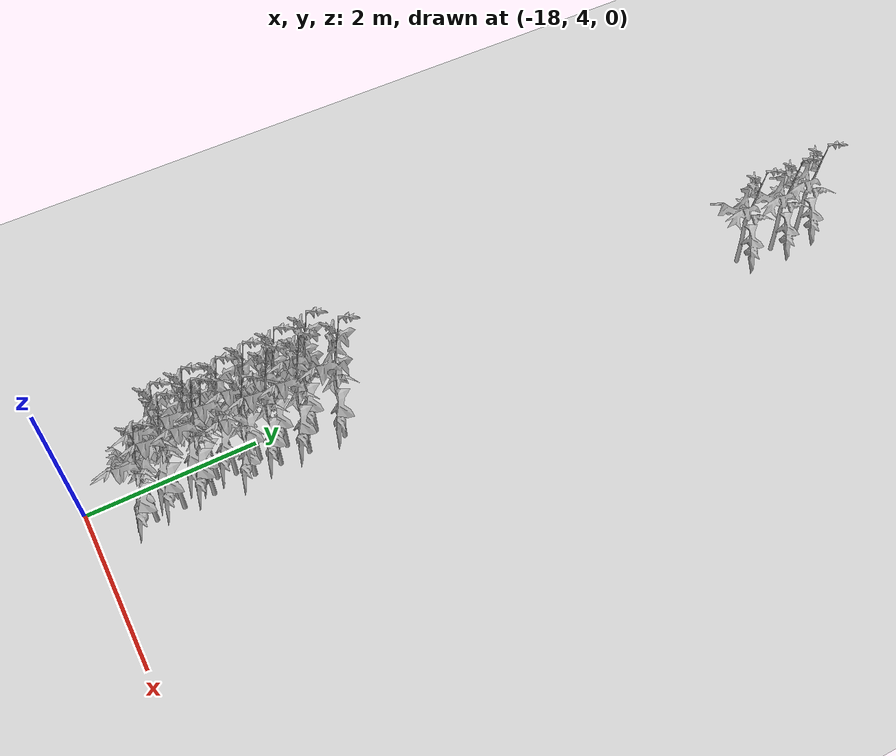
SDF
<sdf version="1.6">
 <world name="default">
  <model name="ground_plane">
   <static>1</static>
   <link name="link">
    <collision name="collision">
     <geometry><plane><normal>0 0 1</normal><size>100 100</size></plane></geometry>
     <surface>
      <contact><collide_bitmask>65535</collide_bitmask></contact>
      <friction><ode><mu>100</mu><mu2>50</mu2></ode></friction>
     </surface>
    </collision>
    <visual name="visual">
     <cast_shadows>0</cast_shadows>
     <geometry><plane><normal>0 0 1</normal><size>100 100</size></plane></geometry>
     <material>
      <script><uri>file://media/materials/scripts/gazebo.material</uri><name>Gazebo/Grey</name></script>
     </material>
    </visual>
   </link>
  </model>
  <model name="Middle_Plant_6">
   <model name="tomato_plant_big">
    <static>1</static>
    <link name="link">
     <collision name="collision">
      <geometry>
       <mesh><scale>5e-06 5e-06 6e-06</scale><uri>model://tomato_plant_big/meshes/tomato-plant.dae</uri></mesh>
      </geometry>
     </collision>
     <visual name="visual">
      <geometry>
       <mesh><scale>5e-06 5e-06 7e-06</scale><uri>model://tomato_plant_big/meshes/tomato-plant.dae</uri></mesh>
      </geometry>
     </visual>
    </link>
    <pose>0.085326 1.23023 0 0 -0 0</pose>
   </model>
   <model name="tomato_plant_big_0">
    <static>1</static>
    <link name="link">
     <collision name="collision">
      <geometry>
       <mesh><scale>5e-06 5e-06 6e-06</scale><uri>model://tomato_plant_big/meshes/tomato-plant.dae</uri></mesh>
      </geometry>
     </collision>
     <visual name="visual">
      <geometry>
       <mesh><scale>5e-06 5e-06 7e-06</scale><uri>model://tomato_plant_big/meshes/tomato-plant.dae</uri></mesh>
      </geometry>
     </visual>
    </link>
    <pose>-0.133881 0.970183 0 0 -0 0</pose>
   </model>
   <model name="tomato_plant_big_1">
    <static>1</static>
    <link name="link">
     <collision name="collision">
      <geometry>
       <mesh><scale>5e-06 5e-06 6e-06</scale><uri>model://tomato_plant_big/meshes/tomato-plant.dae</uri></mesh>
      </geometry>
     </collision>
     <visual name="visual">
      <geometry>
       <mesh><scale>5e-06 5e-06 7e-06</scale><uri>model://tomato_plant_big/meshes/tomato-plant.dae</uri></mesh>
      </geometry>
     </visual>
    </link>
    <pose>0.091162 0.792381 0 0 -0 0</pose>
   </model>
   <model name="tomato_plant_big_2">
    <static>1</static>
    <link name="link">
     <collision name="collision">
      <geometry>
       <mesh><scale>5e-06 5e-06 6e-06</scale><uri>model://tomato_plant_big/meshes/tomato-plant.dae</uri></mesh>
      </geometry>
     </collision>
     <visual name="visual">
      <geometry>
       <mesh><scale>5e-06 5e-06 7e-06</scale><uri>model://tomato_plant_big/meshes/tomato-plant.dae</uri></mesh>
      </geometry>
     </visual>
    </link>
    <pose>-0.099228 0.602587 0 0 -0 0</pose>
   </model>
   <model name="tomato_plant_big_3">
    <static>1</static>
    <link name="link">
     <collision name="collision">
      <geometry>
       <mesh><scale>5e-06 5e-06 6e-06</scale><uri>model://tomato_plant_big/meshes/tomato-plant.dae</uri></mesh>
      </geometry>
     </collision>
     <visual name="visual">
      <geometry>
       <mesh><scale>5e-06 5e-06 7e-06</scale><uri>model://tomato_plant_big/meshes/tomato-plant.dae</uri></mesh>
      </geometry>
     </visual>
    </link>
    <pose>0.083199 0.447645 0 0 -0 0</pose>
   </model>
   <model name="tomato_plant_big_4">
    <static>1</static>
    <link name="link">
     <collision name="collision">
      <geometry>
       <mesh><scale>5e-06 5e-06 6e-06</scale><uri>model://tomato_plant_big/meshes/tomato-plant.dae</uri></mesh>
      </geometry>
     </collision>
     <visual name="visual">
      <geometry>
       <mesh><scale>5e-06 5e-06 7e-06</scale><uri>model://tomato_plant_big/meshes/tomato-plant.dae</uri></mesh>
      </geometry>
     </visual>
    </link>
    <pose>-0.079499 0.263486 0 0 -0 0</pose>
   </model>
   <model name="tomato_plant_big_5">
    <static>1</static>
    <link name="link">
     <collision name="collision">
      <geometry>
       <mesh><scale>5e-06 5e-06 6e-06</scale><uri>model://tomato_plant_big/meshes/tomato-plant.dae</uri></mesh>
      </geometry>
     </collision>
     <visual name="visual">
      <geometry>
       <mesh><scale>5e-06 5e-06 7e-06</scale><uri>model://tomato_plant_big/meshes/tomato-plant.dae</uri></mesh>
      </geometry>
     </visual>
    </link>
    <pose>-0.033274 -0.040578 0 0 -0 0</pose>
   </model>
   <model name="tomato_plant_big_6">
    <static>1</static>
    <link name="link">
     <collision name="collision">
      <geometry>
       <mesh><scale>5e-06 5e-06 6e-06</scale><uri>model://tomato_plant_big/meshes/tomato-plant.dae</uri></mesh>
      </geometry>
     </collision>
     <visual name="visual">
      <geometry>
       <mesh><scale>5e-06 5e-06 7e-06</scale><uri>model://tomato_plant_big/meshes/tomato-plant.dae</uri></mesh>
      </geometry>
     </visual>
    </link>
    <pose>-0.07669 -0.382406 0 0 -0 0</pose>
   </model>
   <model name="tomato_plant_big_7">
    <static>1</static>
    <link name="link">
     <collision name="collision">
      <geometry>
       <mesh><scale>5e-06 5e-06 6e-06</scale><uri>model://tomato_plant_big/meshes/tomato-plant.dae</uri></mesh>
      </geometry>
     </collision>
     <visual name="visual">
      <geometry>
       <mesh><scale>5e-06 5e-06 7e-06</scale><uri>model://tomato_plant_big/meshes/tomato-plant.dae</uri></mesh>
      </geometry>
     </visual>
    </link>
    <pose>0.092388 -0.348189 0 0 -0 0</pose>
   </model>
   <model name="tomato_plant_big_8">
    <static>1</static>
    <link name="link">
     <collision name="collision">
      <geometry>
       <mesh><scale>5e-06 5e-06 6e-06</scale><uri>model://tomato_plant_big/meshes/tomato-plant.dae</uri></mesh>
      </geometry>
     </collision>
     <visual name="visual">
      <geometry>
       <mesh><scale>5e-06 5e-06 7e-06</scale><uri>model://tomato_plant_big/meshes/tomato-plant.dae</uri></mesh>
      </geometry>
     </visual>
    </link>
    <pose>0.099522 -0.697525 0 0 -0 0</pose>
   </model>
   <model name="tomato_plant_big_9">
    <static>1</static>
    <link name="link">
     <collision name="collision">
      <geometry>
       <mesh><scale>5e-06 5e-06 6e-06</scale><uri>model://tomato_plant_big/meshes/tomato-plant.dae</uri></mesh>
      </geometry>
     </collision>
     <visual name="visual">
      <geometry>
       <mesh><scale>5e-06 5e-06 7e-06</scale><uri>model://tomato_plant_big/meshes/tomato-plant.dae</uri></mesh>
      </geometry>
     </visual>
    </link>
    <pose>-0.050449 -0.712772 0 0 -0 0</pose>
   </model>
   <model name="tomato_plant_medium">
    <static>1</static>
    <link name="link">
     <collision name="collision">
      <geometry>
       <mesh><scale>5e-06 5e-06 6e-06</scale><uri>model://tomato_plant_medium/meshes/tomato-plant.dae</uri></mesh>
      </geometry>
     </collision>
     <visual name="visual">
      <geometry>
       <mesh><scale>5e-06 5e-06 6e-06</scale><uri>model://tomato_plant_medium/meshes/tomato-plant.dae</uri></mesh>
      </geometry>
     </visual>
    </link>
    <pose>0.078434 0.139842 0 0 -0 0</pose>
   </model>
   <model name="tomato_plant_medium_0">
    <static>1</static>
    <link name="link">
     <collision name="collision">
      <geometry>
       <mesh><scale>5e-06 5e-06 6e-06</scale><uri>model://tomato_plant_medium/meshes/tomato-plant.dae</uri></mesh>
      </geometry>
     </collision>
     <visual name="visual">
      <geometry>
       <mesh><scale>5e-06 5e-06 6e-06</scale><uri>model://tomato_plant_medium/meshes/tomato-plant.dae</uri></mesh>
      </geometry>
     </visual>
    </link>
    <pose>-0.079755 -0.244483 0 0 -0 0</pose>
   </model>
   <model name="tomato_plant_medium_1">
    <static>1</static>
    <link name="link">
     <collision name="collision">
      <geometry>
       <mesh><scale>5e-06 5e-06 6e-06</scale><uri>model://tomato_plant_medium/meshes/tomato-plant.dae</uri></mesh>
      </geometry>
     </collision>
     <visual name="visual">
      <geometry>
       <mesh><scale>5e-06 5e-06 6e-06</scale><uri>model://tomato_plant_medium/meshes/tomato-plant.dae</uri></mesh>
      </geometry>
     </visual>
    </link>
    <pose>0.106744 -1.01815 0 0 -0 0</pose>
   </model>
   <model name="tomato_plant_small">
    <static>1</static>
    <link name="link">
     <collision name="collision">
      <geometry>
       <mesh><scale>5e-06 5e-06 5e-06</scale><uri>model://tomato_plant_small/meshes/tomato-plant.dae</uri></mesh>
      </geometry>
     </collision>
     <visual name="visual">
      <geometry>
       <mesh><scale>5e-06 5e-06 5e-06</scale><uri>model://tomato_plant_small/meshes/tomato-plant.dae</uri></mesh>
      </geometry>
     </visual>
    </link>
    <pose>-0.083979 -1.00222 0 0 -0 0</pose>
   </model>
   <static>0</static>
   <pose>-17.6844 5.68281 0 0 -0 0</pose>
  </model>
  <model name="tomato_plant_small_7">
   <static>1</static>
   <link name="link">
    <collision name="collision">
     <geometry>
      <mesh><scale>5e-06 5e-06 5e-06</scale><uri>model://tomato_plant_small/meshes/tomato-plant.dae</uri></mesh>
     </geometry>
    </collision>
    <visual name="visual">
     <geometry>
      <mesh><scale>5e-06 5e-06 5e-06</scale><uri>model://tomato_plant_small/meshes/tomato-plant.dae</uri></mesh>
     </geometry>
    </visual>
   </link>
   <pose>-17.6327 12.2746 0 0 -0 0</pose>
  </model>
  <model name="tomato_plant_small_9">
   <static>1</static>
   <link name="link">
    <collision name="collision">
     <geometry>
      <mesh><scale>5e-06 5e-06 5e-06</scale><uri>model://tomato_plant_small/meshes/tomato-plant.dae</uri></mesh>
     </geometry>
    </collision>
    <visual name="visual">
     <geometry>
      <mesh><scale>5e-06 5e-06 5e-06</scale><uri>model://tomato_plant_small/meshes/tomato-plant.dae</uri></mesh>
     </geometry>
    </visual>
   </link>
   <pose>-17.5945 12.7586 0 0 -0 0</pose>
  </model>
  <model name="tomato_plant_small_10">
   <static>1</static>
   <link name="link">
    <collision name="collision">
     <geometry>
      <mesh><scale>5e-06 5e-06 5e-06</scale><uri>model://tomato_plant_small/meshes/tomato-plant.dae</uri></mesh>
     </geometry>
    </collision>
    <visual name="visual">
     <geometry>
      <mesh><scale>5e-06 5e-06 5e-06</scale><uri>model://tomato_plant_small/meshes/tomato-plant.dae</uri></mesh>
     </geometry>
    </visual>
   </link>
   <pose>-17.6456 13.159 0 0 -0 0</pose>
  </model>
 </world>
</sdf>
